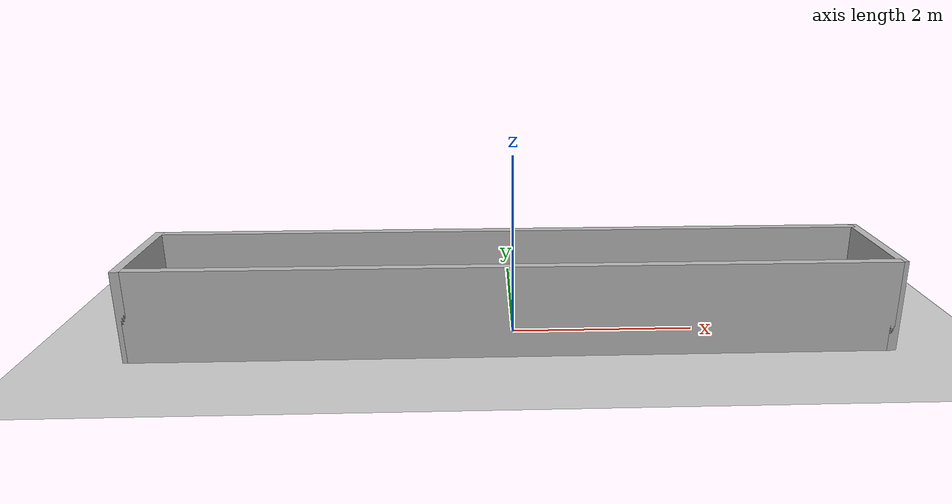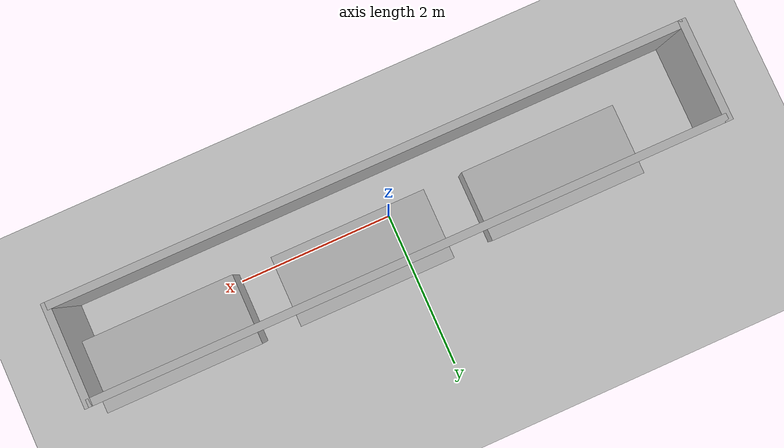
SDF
<?xml version="1.0" ?>
<sdf version="1.6">
  <world name="care_facility">

    <include><uri>model://ground_plane</uri></include>
    <include><uri>model://sun</uri></include>

    <!-- ============ 복도 (길이 8m, 폭 1.2m) ============ -->
    <!-- 좌측 벽 -->
    <model name="wall_L">
      <static>true</static>
      <pose>0 0.6 0.5 0 0 0</pose>
      <link name="link">
        <collision name="c">
          <geometry><box><size>8 0.1 1.0</size></box></geometry>
        </collision>
        <visual name="v">
          <geometry><box><size>8 0.1 1.0</size></box></geometry>
        </visual>
      </link>
    </model>

    <!-- 우측 벽 -->
    <model name="wall_R">
      <static>true</static>
      <pose>0 -0.6 0.5 0 0 0</pose>
      <link name="link">
        <collision name="c">
          <geometry><box><size>8 0.1 1.0</size></box></geometry>
        </collision>
        <visual name="v">
          <geometry><box><size>8 0.1 1.0</size></box></geometry>
        </visual>
      </link>
    </model>

    <!-- 복도 끝 막음 (양쪽) -->
    <model name="wall_end_A">
      <static>true</static>
      <pose>4 0 0.5 0 0 0</pose>
      <link name="link">
        <collision name="c">
          <geometry><box><size>0.1 1.3 1.0</size></box></geometry>
        </collision>
        <visual name="v">
          <geometry><box><size>0.1 1.3 1.0</size></box></geometry>
        </visual>
      </link>
    </model>

    <model name="wall_end_B">
      <static>true</static>
      <pose>-4 0 0.5 0 0 0</pose>
      <link name="link">
        <collision name="c">
          <geometry><box><size>0.1 1.3 1.0</size></box></geometry>
        </collision>
        <visual name="v">
          <geometry><box><size>0.1 1.3 1.0</size></box></geometry>
        </visual>
      </link>
    </model>

    <!-- ============ 침상 3개 (복도 좌측에 배치) ============ -->
    <!-- 침상은 복도 안쪽으로 살짝 들어와 장애물이 되도록 -->
    <model name="bed_1">
      <static>true</static>
      <pose>-2.0 0.35 0.25 0 0 0</pose>
      <link name="link">
        <collision name="c">
          <geometry><box><size>2.0 0.9 0.5</size></box></geometry>
        </collision>
        <visual name="v">
          <geometry><box><size>2.0 0.9 0.5</size></box></geometry>
        </visual>
      </link>
    </model>

    <model name="bed_2">
      <static>true</static>
      <pose>0.5 0.35 0.25 0 0 0</pose>
      <link name="link">
        <collision name="c">
          <geometry><box><size>2.0 0.9 0.5</size></box></geometry>
        </collision>
        <visual name="v">
          <geometry><box><size>2.0 0.9 0.5</size></box></geometry>
        </visual>
      </link>
    </model>

    <model name="bed_3">
      <static>true</static>
      <pose>3.0 0.35 0.25 0 0 0</pose>
      <link name="link">
        <collision name="c">
          <geometry><box><size>2.0 0.9 0.5</size></box></geometry>
        </collision>
        <visual name="v">
          <geometry><box><size>2.0 0.9 0.5</size></box></geometry>
        </visual>
      </link>
    </model>

  </world>
</sdf>
